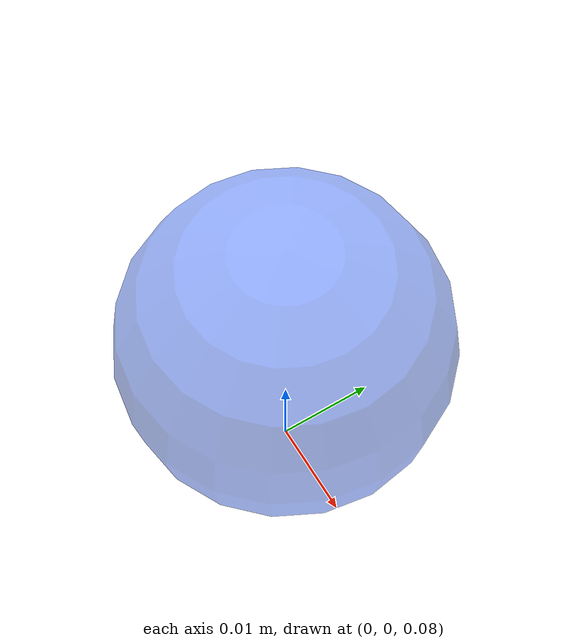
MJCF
<mujoco>
    <compiler angle="radian" inertiafromgeom="auto"/>

    <asset>
        <material name="green" rgba="0 1 0 1" />
        <texture name="grid" type="2d" builtin="checker" width="512" height="512"
                 rgb1=".1 .2 .3" rgb2=".2 .3 .4" />
        <material name="grid" texture="grid" texrepeat="1 1" texuniform="true" reflectance=".2" />
        <material name="water_drop" rgba="0.2 0.4 1 0.5" />
    </asset>

    <worldbody>
        <light diffuse="0.3 0.3 0.3" pos="1 0 3" dir="-1 0 -3" />
        <geom type="plane" size="10 10 0.1" material="grid" group="1"/>

        <body pos="0 0 0.1">
            <body name="object">
                <!-- Mass and inertia after enlargement -->
                <inertial pos="0 0 0" mass="0.004" diaginertia="0.00004 0.00004 0.00004"/>

                <!-- Radius enlarged to 0.016m -->
                <geom type="sphere" size="0.016" material="water_drop" group="1"
                      friction="0.001 0.0001 0.0001"/>
            </body>

            <!-- Site also enlarged synchronously -->
            <site rgba="0 0 0 0" size="0.0025" pos="0 0 -0.016" name="bottom_site" />
            <site rgba="0 0 0 0" size="0.0025" pos="0 0 0.016"  name="top_site" />
            <site rgba="0 0 0 0" size="0.0025" pos="0.016 0 0"  name="horizontal_radius_site" />
        </body>
    </worldbody>
</mujoco>
